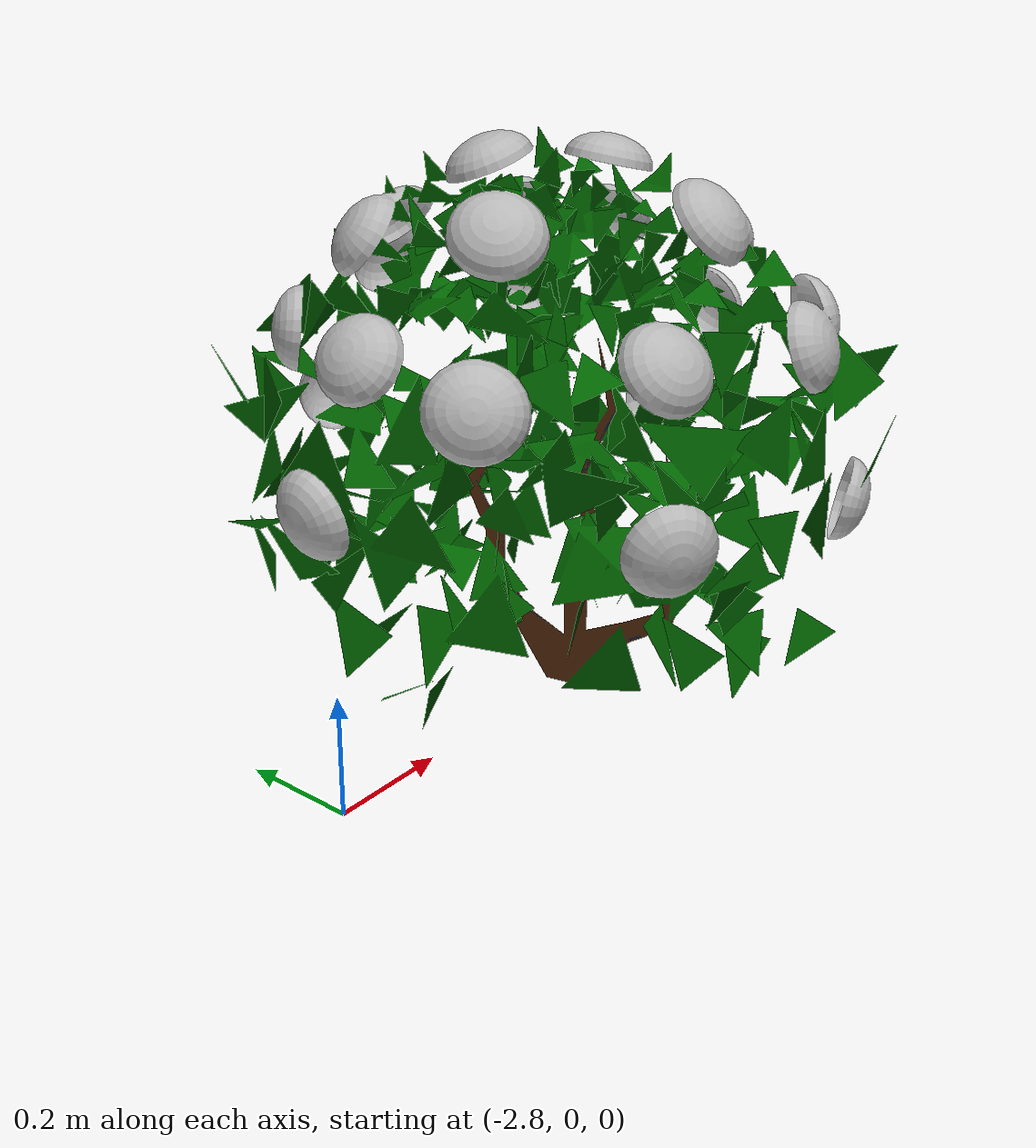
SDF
<?xml version="1.0"?>
<sdf version='1.3'>
	<model name="hydrangea_macrophylla">
		<pose>0 0 0 0 0 0</pose>
		<static>true</static>
		<allow_auto_disable>true</allow_auto_disable>
		<link name="link">
			<pose>0 0 0 0 0 0</pose>
			<inertial>
				<mass>10</mass>
				<pose>0 0 0 0 0 0</pose>
				<inertia>
					<ixx>1</ixx>
					<ixy>0</ixy>
					<ixz>0</ixz>
					<iyy>1</iyy>
					<iyz>0</iyz>
					<izz>1</izz>
				</inertia>
			</inertial>
			<visual name="visual">
				<geometry>
					<mesh>
						<uri>model://trees/hydrangea_macrophylla/meshes/hydrangea_macrophylla.dae</uri>
					</mesh>
				</geometry>
			</visual>
		</link>

	</model>
</sdf>
